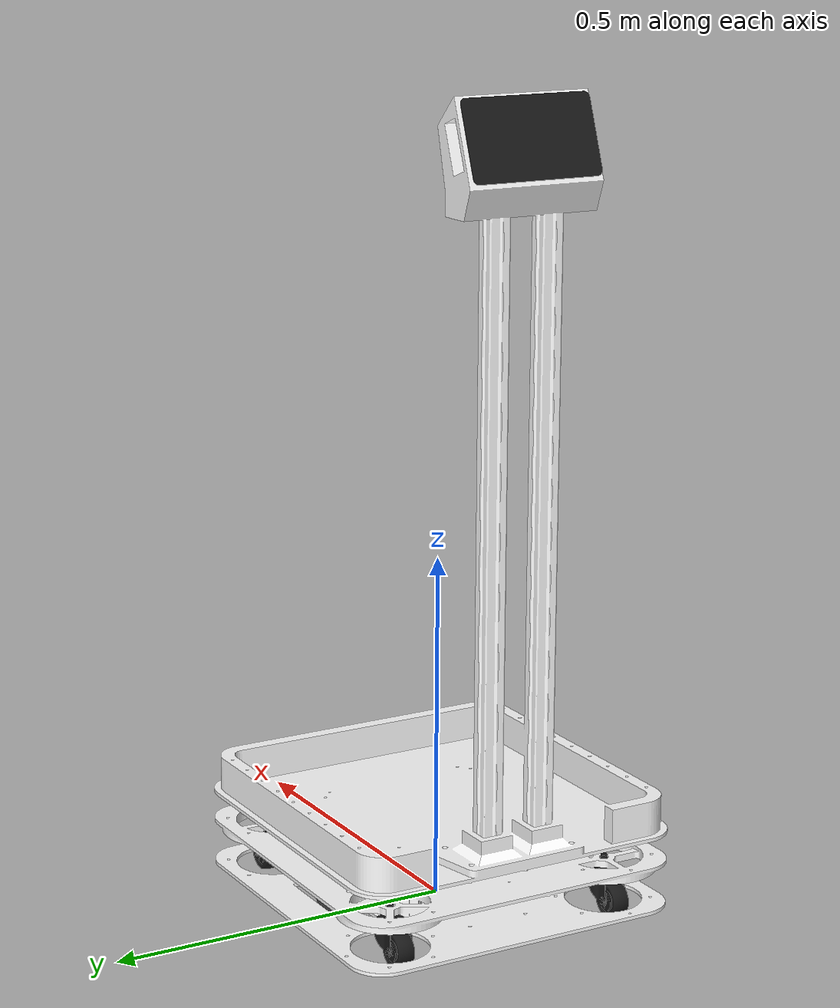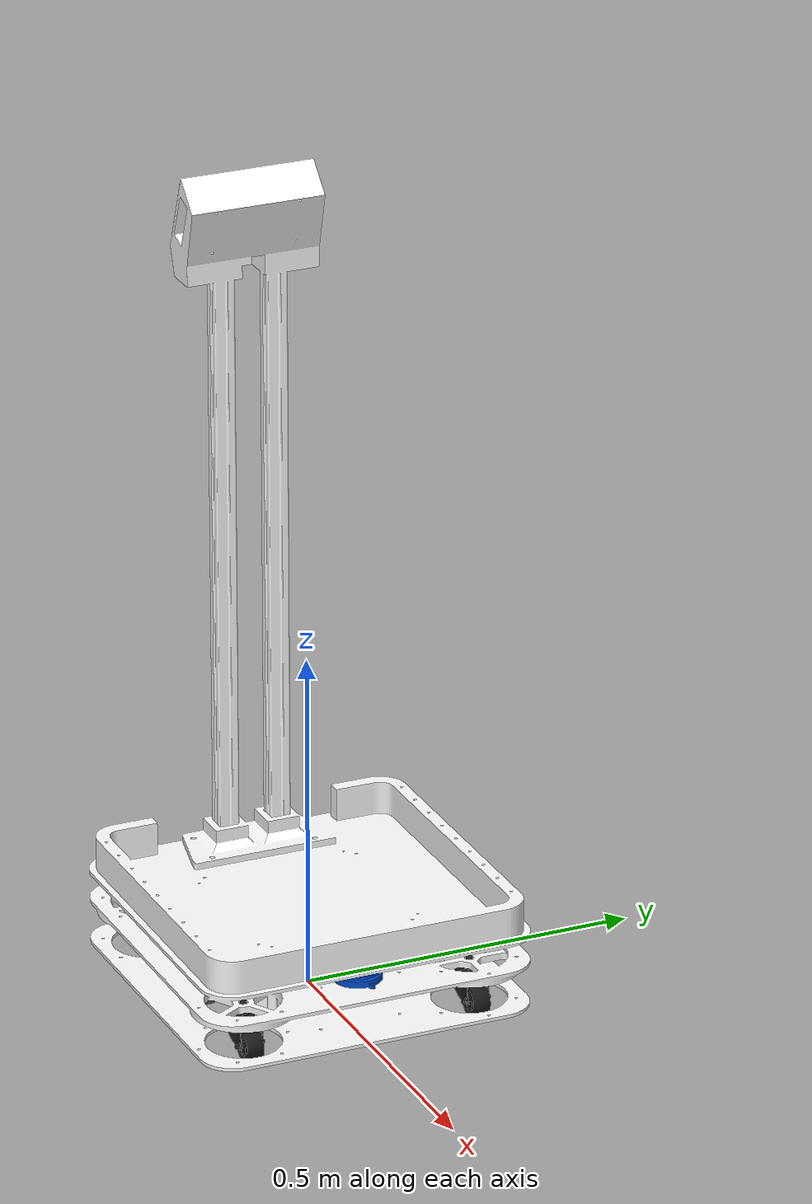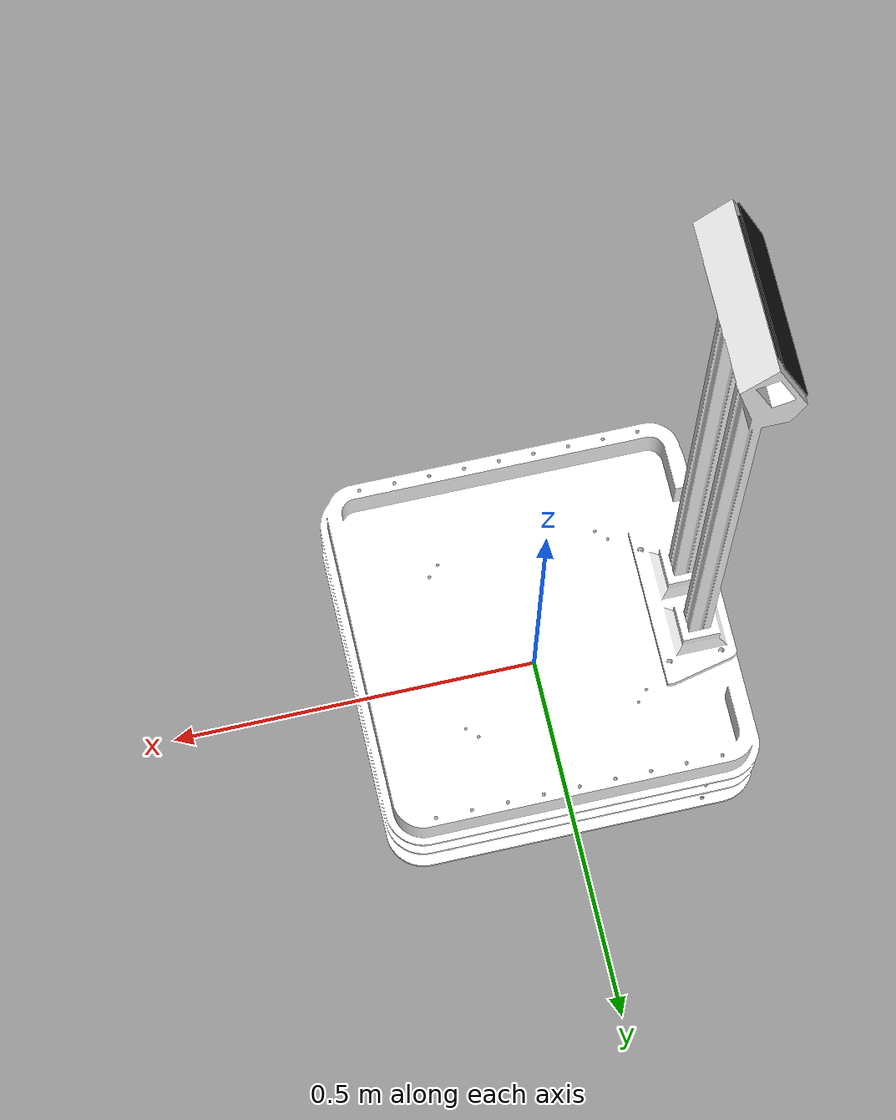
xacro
<?xml version="1.0" ?>
<robot name="Luggage" xmlns:xacro="http://www.ros.org/wiki/xacro">

<xacro:include filename="$(find luggage_description)/urdf/materials.xacro" />

<link name="base_footprint"/>
<joint name="base_joint" type="fixed">
  <parent link="base_footprint"/>
  <child link="base_link"/>
  <origin xyz="0 0 0" rpy="0 0 0"/>
</joint>

<link name="base_link">
  <inertial>
    <origin xyz="-0.04155435148983267 0.00019978158201649002 0.2600118999268405" rpy="0 0 0"/>
    <mass value="57.28490014252565"/>
    <inertia ixx="7.906906" iyy="8.248861" izz="2.580355" ixy="0.001262" iyz="-0.005831" ixz="1.449235"/>
  </inertial>
  <visual>
    <origin xyz="0 0 0" rpy="0 0 0"/>
    <geometry>
      <mesh filename="package://luggage_description/meshes/base_link.stl" scale="0.001 0.001 0.001"/>
    </geometry>
    <material name="white"/>
  </visual>
  <collision>
    <origin xyz="0 0 0" rpy="0 0 0"/>
    <geometry>
      <mesh filename="package://luggage_description/meshes/base_link.stl" scale="0.001 0.001 0.001"/>
    </geometry>
  </collision>
</link>

<link name="right_wheel_1">
  <inertial>
    <origin xyz="-8.678876819547652e-12 -0.039651864535639986 0.16320871216458172" rpy="0 0 0"/>
    <mass value="0.970427506826019"/>
    <inertia ixx="0.000736" iyy="0.001376" izz="0.000736" ixy="0.0" iyz="0.0" ixz="0.0"/>
  </inertial>
  <visual>
    <origin xyz="0.0 0.127209 0.115" rpy="0 0 0"/>
    <geometry>
      <mesh filename="package://luggage_description/meshes/right_wheel_1.stl" scale="0.001 0.001 0.001"/>
    </geometry>
    <material name="dark_grey"/>
  </visual>
  <collision>
    <origin xyz="0.0 0.127209 0.115" rpy="0 0 0"/>
    <geometry>
      <mesh filename="package://luggage_description/meshes/right_wheel_1.stl" scale="0.001 0.001 0.001"/>
    </geometry>
  </collision>
</link>

<link name="left_wheel_1">
  <inertial>
    <origin xyz="-8.663971012969507e-12 0.2933481354643602 -0.1617912878354192" rpy="0 0 0"/>
    <mass value="0.970427506826019"/>
    <inertia ixx="0.000736" iyy="0.001376" izz="0.000736" ixy="0.0" iyz="0.0" ixz="0.0"/>
  </inertial>
  <visual>
    <origin xyz="0.0 0.127209 -0.21" rpy="0 0 0"/>
    <geometry>
      <mesh filename="package://luggage_description/meshes/left_wheel_1.stl" scale="0.001 0.001 0.001"/>
    </geometry>
    <material name="dark_grey"/>
  </visual>
  <collision>
    <origin xyz="0.0 0.127209 -0.21" rpy="0 0 0"/>
    <geometry>
      <mesh filename="package://luggage_description/meshes/left_wheel_1.stl" scale="0.001 0.001 0.001"/>
    </geometry>
  </collision>
</link>

<link name="rear_left_castor_wheel_1">
  <inertial>
    <origin xyz="0.018293361989764972 -0.013583369696051645 0.15780558745450107" rpy="0 0 0"/>
    <mass value="0.4900823971797279"/>
    <inertia ixx="0.000189" iyy="0.00026" izz="0.000143" ixy="0.0" iyz="-0.0" ixz="6e-05"/>
  </inertial>
  <visual>
    <origin xyz="-0.173022 0.1595 0.125022" rpy="0 0 0"/>
    <geometry>
      <mesh filename="package://luggage_description/meshes/rear_left_castor_wheel_1.stl" scale="0.001 0.001 0.001"/>
    </geometry>
    <material name="black"/>
  </visual>
  <collision>
    <origin xyz="-0.173022 0.1595 0.125022" rpy="0 0 0"/>
    <geometry>
      <mesh filename="package://luggage_description/meshes/rear_left_castor_wheel_1.stl" scale="0.001 0.001 0.001"/>
    </geometry>
  </collision>
</link>

<link name="front_left_castor_wheel_1">
  <inertial>
    <origin xyz="-0.018241713267546672 -0.013462489320543364 0.1578807182999861" rpy="0 0 0"/>
    <mass value="0.49141625140362144"/>
    <inertia ixx="0.00019" iyy="0.000261" izz="0.000144" ixy="0.0" iyz="1e-06" ixz="-6e-05"/>
  </inertial>
  <visual>
    <origin xyz="0.173022 0.1595 0.125022" rpy="0 0 0"/>
    <geometry>
      <mesh filename="package://luggage_description/meshes/front_left_castor_wheel_1.stl" scale="0.001 0.001 0.001"/>
    </geometry>
    <material name="black"/>
  </visual>
  <collision>
    <origin xyz="0.173022 0.1595 0.125022" rpy="0 0 0"/>
    <geometry>
      <mesh filename="package://luggage_description/meshes/front_left_castor_wheel_1.stl" scale="0.001 0.001 0.001"/>
    </geometry>
  </collision>
</link>

<link name="rear_right_castor_wheel_1">
  <inertial>
    <origin xyz="0.018241713267546422 0.3324624893205428 -0.18816328170001376" rpy="0 0 0"/>
    <mass value="0.49141625140362816"/>
    <inertia ixx="0.00019" iyy="0.000261" izz="0.000144" ixy="0.0" iyz="-1e-06" ixz="6e-05"/>
  </inertial>
  <visual>
    <origin xyz="-0.173022 0.1595 -0.221022" rpy="0 0 0"/>
    <geometry>
      <mesh filename="package://luggage_description/meshes/rear_right_castor_wheel_1.stl" scale="0.001 0.001 0.001"/>
    </geometry>
    <material name="black"/>
  </visual>
  <collision>
    <origin xyz="-0.173022 0.1595 -0.221022" rpy="0 0 0"/>
    <geometry>
      <mesh filename="package://luggage_description/meshes/rear_right_castor_wheel_1.stl" scale="0.001 0.001 0.001"/>
    </geometry>
  </collision>
</link>

<link name="front_right_castor_wheel_1">
  <inertial>
    <origin xyz="-0.018432268038539118 0.3327847625871349 -0.18816328170001462" rpy="0 0 0"/>
    <mass value="0.49141625140362577"/>
    <inertia ixx="0.00019" iyy="0.000261" izz="0.000144" ixy="0.0" iyz="1e-06" ixz="-6e-05"/>
  </inertial>
  <visual>
    <origin xyz="0.173022 0.1595 -0.221022" rpy="0 0 0"/>
    <geometry>
      <mesh filename="package://luggage_description/meshes/front_right_castor_wheel_1.stl" scale="0.001 0.001 0.001"/>
    </geometry>
    <material name="black"/>
  </visual>
  <collision>
    <origin xyz="0.173022 0.1595 -0.221022" rpy="0 0 0"/>
    <geometry>
      <mesh filename="package://luggage_description/meshes/front_right_castor_wheel_1.stl" scale="0.001 0.001 0.001"/>
    </geometry>
  </collision>
</link>

<link name="display_link_1">
  <inertial>
    <origin xyz="0.010971565218587886 1.154298280600943 0.9983860709471024" rpy="0 0 0"/>
    <mass value="0.8395394764270585"/>
    <inertia ixx="0.002664" iyy="0.000726" izz="0.002113" ixy="-2e-06" iyz="0.0" ixz="-0.000232"/>
  </inertial>
  <visual>
    <origin xyz="0.233116 1.155804 -0.111" rpy="0 0 0"/>
    <geometry>
      <mesh filename="package://luggage_description/meshes/display_link_1.stl" scale="0.001 0.001 0.001"/>
    </geometry>
    <material name="black"/>
  </visual>
  <collision>
    <origin xyz="0.233116 1.155804 -0.111" rpy="0 0 0"/>
    <geometry>
      <mesh filename="package://luggage_description/meshes/display_link_1.stl" scale="0.001 0.001 0.001"/>
    </geometry>
  </collision>
</link>

<link name="lidar_1">
  <inertial>
    <origin xyz="-0.012430298462604072 -0.00023976641704669244 0.011368410178448085" rpy="0 0 0"/>
    <mass value="0.915948795313175"/>
    <inertia ixx="0.000369" iyy="0.000787" izz="0.000883" ixy="6e-06" iyz="3e-06" ixz="-0.000151"/>
  </inertial>
  <visual>
    <origin xyz="-0.175 0.0 -0.0855" rpy="0 0 0"/>
    <geometry>
      <mesh filename="package://luggage_description/meshes/lidar_1.stl" scale="0.001 0.001 0.001"/>
    </geometry>
    <material name="blue"/>
  </visual>
  <collision>
    <origin xyz="-0.175 0.0 -0.0855" rpy="0 0 0"/>
    <geometry>
      <mesh filename="package://luggage_description/meshes/lidar_1.stl" scale="0.001 0.001 0.001"/>
    </geometry>
  </collision>
</link>

<joint name="right_wheel_joint" type="continuous">
  <origin xyz="0.0 -0.127209 -0.115" rpy="0 0 0"/>
  <parent link="base_link"/>
  <child link="right_wheel_1"/>
  <axis xyz="-0.0 -1.0 0.0"/>
</joint>

<joint name="left_wheel_joint" type="continuous">
  <origin xyz="0.0 -0.127209 0.21" rpy="0 0 0"/>
  <parent link="base_link"/>
  <child link="left_wheel_1"/>
  <axis xyz="0.0 1.0 -0.0"/>
</joint>

<joint name="rear_left_castor_joint" type="fixed">
  <origin xyz="0.173022 -0.1595 -0.125022" rpy="0 0 0"/>
  <parent link="base_link"/>
  <child link="rear_left_castor_wheel_1"/>
</joint>

<joint name="front_left_castor_joint" type="fixed">
  <origin xyz="-0.173022 -0.1595 -0.125022" rpy="0 0 0"/>
  <parent link="base_link"/>
  <child link="front_left_castor_wheel_1"/>
</joint>

<joint name="rear_right_castor_joint" type="fixed">
  <origin xyz="0.173022 -0.1595 0.221022" rpy="0 0 0"/>
  <parent link="base_link"/>
  <child link="rear_right_castor_wheel_1"/>
</joint>

<joint name="front_right_castor_joint" type="fixed">
  <origin xyz="-0.173022 -0.1595 0.221022" rpy="0 0 0"/>
  <parent link="base_link"/>
  <child link="front_right_castor_wheel_1"/>
</joint>

<joint name="display_joint" type="fixed">
  <origin xyz="-0.233116 -1.155804 0.111" rpy="0 0 0"/>
  <parent link="base_link"/>
  <child link="display_link_1"/>
</joint>

<joint name="lidar_joint" type="fixed">
  <origin xyz="0.175 0.0 0.0855" rpy="0 0 0"/>
  <parent link="base_link"/>
  <child link="lidar_1"/>
</joint>

</robot>

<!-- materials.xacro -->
<robot xmlns:xacro="http://www.ros.org/wiki/xacro">

  <material name="black">
    <color rgba="0.1 0.1 0.1 1.0"/>
  </material>

  <material name="dark_grey">
    <color rgba="0.3 0.3 0.3 1.0"/>
  </material>

  <material name="blue">
    <color rgba="0.0 0.3 0.8 1.0"/>
  </material>

  <material name="white">
    <color rgba="1.0 1.0 1.0 1.0"/>
  </material>

</robot>
